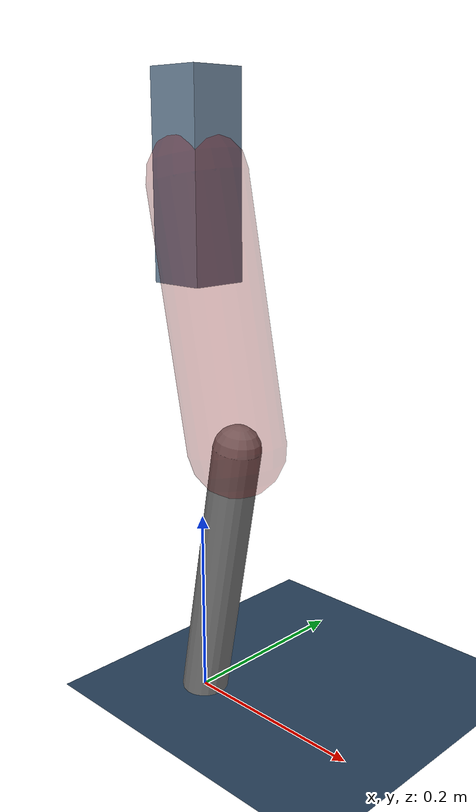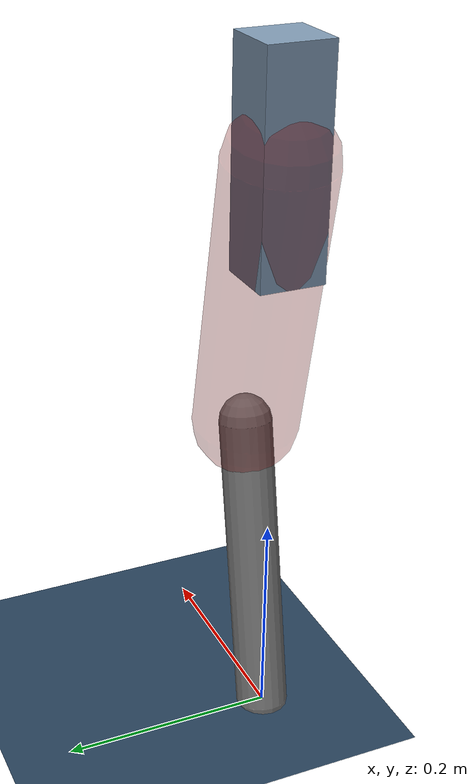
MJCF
<mujoco model="Hopper2D">
	<compiler inertiafromgeom="true" angle="radian" />
	<option timestep="0.001" integrator="implicit" cone="elliptic" solver="Newton" tolerance="1e-10" />

	<default>
		<geom contype="1" conaffinity="1" condim="3" friction="2 0.005 0.0001" solref="0.005 1" />
		<joint limited="true" damping="0.1" />
	</default>

	<asset>
		<texture name="skybox" type="skybox" builtin="gradient" rgb1=".4 .6 .8" rgb2="0 0 0" width="800" height="800" />
		<texture name="grid" type="2d" builtin="checker" rgb1=".1 .2 .3" rgb2=".2 .3 .4" width="300" height="300" mark="edge" markrgb=".2 .3 .4" />
		<material name="ground" texture="grid" texrepeat="1 1" texuniform="true" reflectance="0.1" />
		<material name="leg" rgba="0.5 0.6 0.7 1" />
	</asset>

	<worldbody>

		<geom name="floor" type="plane" size="5 5 0.25" material="ground" />

		<light directional="false" diffuse="0.8 0.8 0.8" specular="0.3 0.3 0.3" pos="0 0 2" dir="0 0 -1" />
		<light mode="targetbodycom" target="base" directional="false" diffuse="0.8 0.8 0.8" specular="0.3 0.3 0.3" pos="0 0 2" dir="0 0 -1" />

		<camera name="fixed" pos="0 -2 1" xyaxes="1 0 0 0 0 1" />
		<camera name="tracking" mode="trackcom" pos="0 -3 1" />

		<body name="root" pos="0 0 0.5483768706294883">
			<joint name="slide_x" type="slide" axis="1 0 0" range="-100 100" />
			<joint name="slide_z" type="slide" axis="0 0 1" range="0 10" />

			<body name="base" pos="0 0 0">
				<geom name="torso" type="box" size="0.03 0.03 0.1" mass="1.981" material="leg" />

				<body name="link1" pos="0 0 0" euler="0 1.3720792550664873 0">
					<joint type="hinge" axis="0 -1 0" pos="0 0 0" name="hinge1" limited="true" range="-3.14 3.14" stiffness="0" damping="0.1" />
					<geom name="thigh" type="capsule" fromto="0 0 0 0.266152770954431 0 0" size="0.05" rgba="0.5 0 0 0.3" mass="0.8985124815769637" />

					<body name="link2" pos="0.266152770954431 0 0" euler="0 0.3794995372280178 0">
						<joint type="hinge" axis="0 -1 0" pos="0 0 0" name="hinge2" limited="true" range="-3.14 3.14" stiffness="0" damping="0.1" />
						<geom name="shank" type="capsule" fromto="0 0 0 0.2922240996750572 0 0" size="0.025" mass="0.47707927974004577" />

					</body>
				</body>
			</body>
		</body>
	</worldbody>

	<actuator>
		<motor name="torque1" joint="hinge1" ctrlrange="-44.5493629699474 44.5493629699474" ctrllimited="true" gear="1" />
		<motor name="torque2" joint="hinge2" ctrlrange="-36.970575230297705 36.970575230297705" ctrllimited="true" gear="1" />
	</actuator>
</mujoco>
